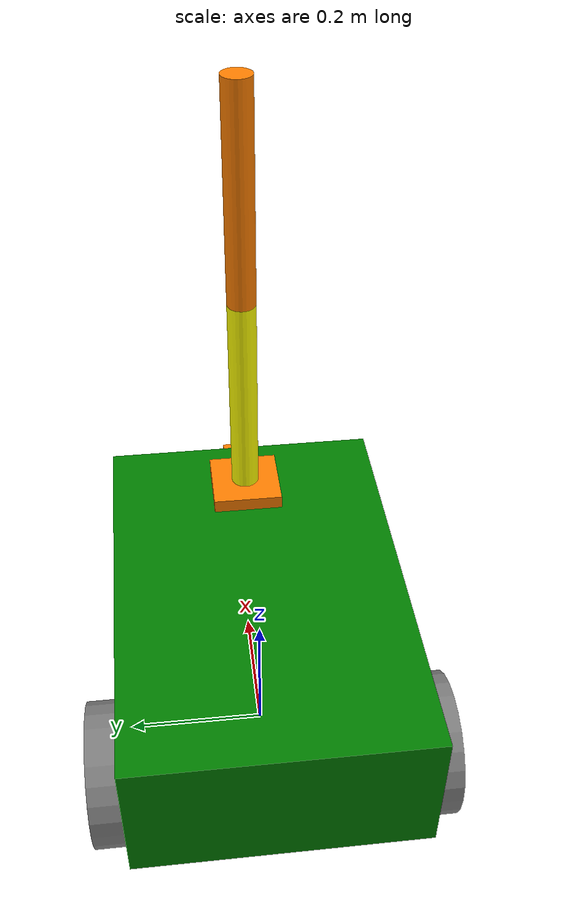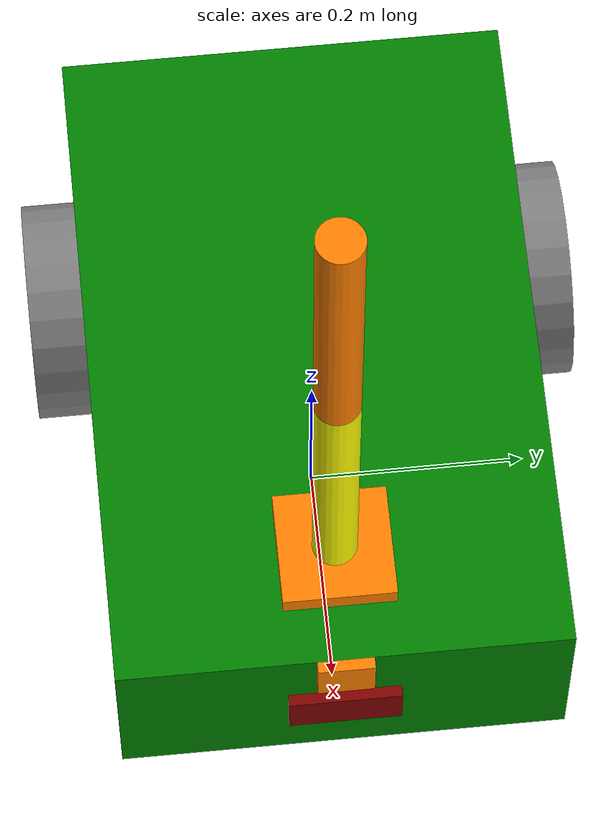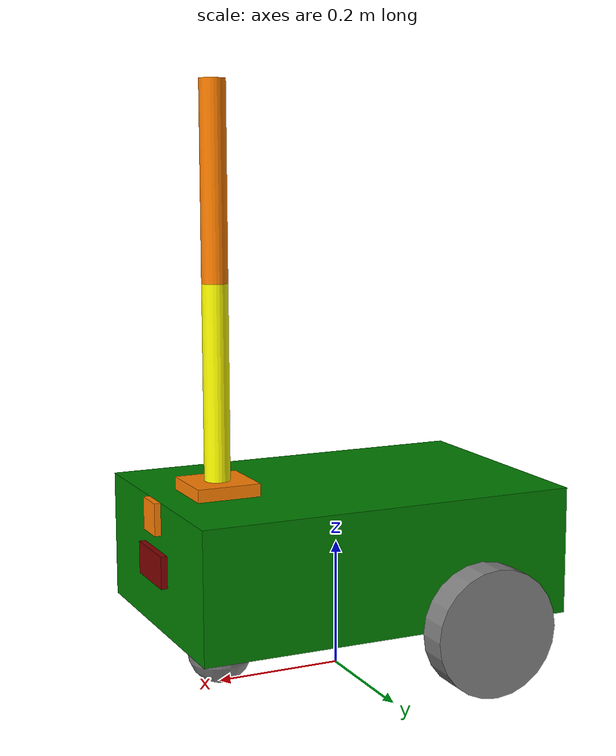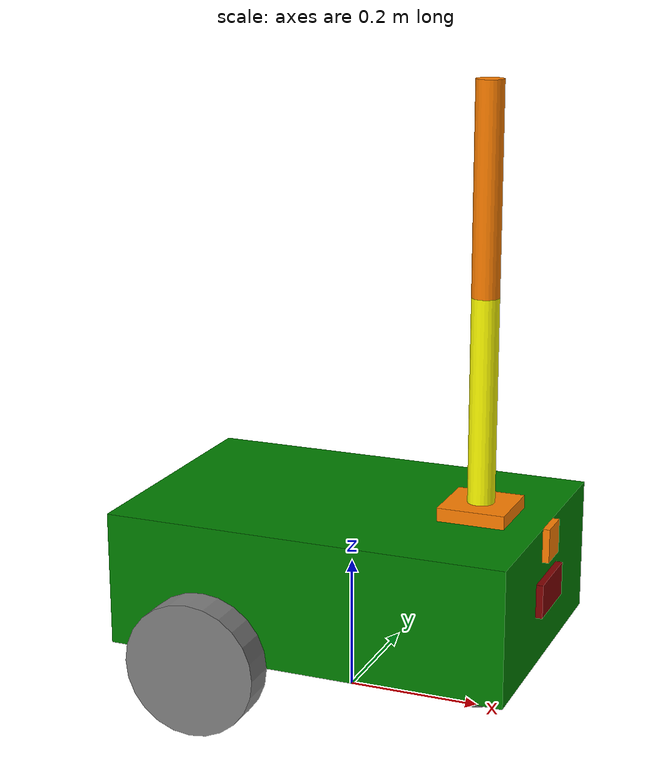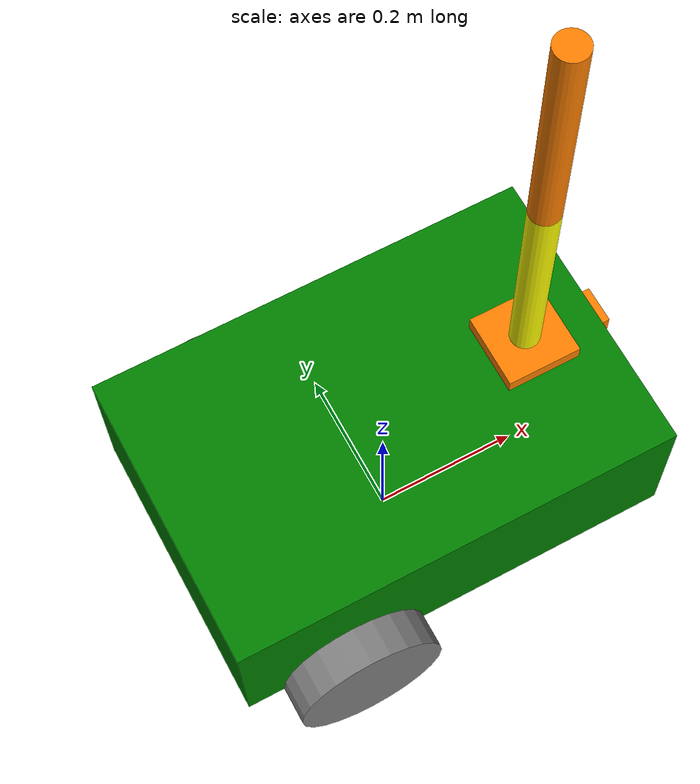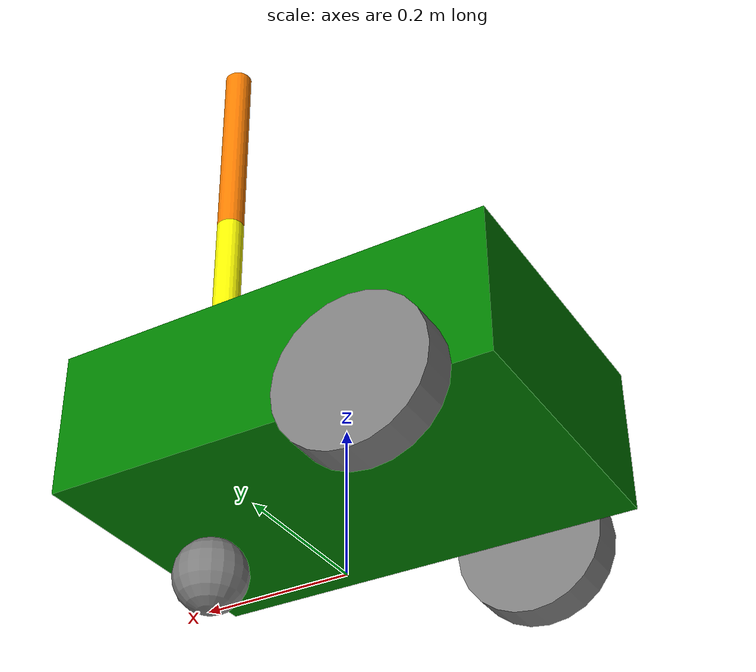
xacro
<?xml version="1.0"?>
<robot name="my_robot" xmlns:xacro="http://www.ros.org/wiki/xacro">

    <xacro:include filename="common_properties.xacro" />
    <xacro:include filename="mobile_base.xacro" />

    <xacro:include filename="mobile_base_gazebo.xacro" />
    <xacro:include filename="arm.xacro" />
    <xacro:include filename="arm_gazebo.xacro"/>
    <xacro:include filename="camera.xacro" />
    <xacro:include filename="distance_sensors.xacro" />

    <joint name="mobile_base_arm_joint" type="fixed">
        <parent link="base_link" />
        <child link="arm_base_link"/>
        <origin xyz="${base_length /3.0} 0 ${base_heigth}" rpy="0 0 0" />
    </joint>

</robot>

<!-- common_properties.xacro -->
<robot xmlns:xacro="http://www.ros.org/wiki/xacro">

    <material name="green">
        <color rgba="0 0.5 0 1" />
    </material>

    <material name="grey">
        <color rgba="0.5 0.5 0.5 1" />
    </material>

    <material name="red">
        <color rgba="0.5 0 0 1" />
    </material>

    <material name="yellow">
        <color rgba="1 1 0 1" />
    </material>

    <material name="orange">
        <color rgba="1.0 0.5 0 1" />
    </material>

    <xacro:macro name="box_inertia" params="m x y z o_xyz o_rpy">
        <inertial>
            <mass value="${m}"/>
            <origin xyz="${o_xyz}" rpy="${o_rpy}"/>
            <inertia ixx="${(m/12) * (y*y + z*z)}" ixy="0" ixz="0"
                     iyy="${(m/12) * (x*x+ z*z)}" iyz="0"
                     izz="${(m/12) * (y*y + x*x)}" />
        </inertial>
    </xacro:macro>

    <xacro:macro name="cylinder_inertia" params="m r l o_xyz o_rpy">
        <inertial>
            <mass value="${m}"/>
            <origin xyz="${o_xyz}" rpy="${o_rpy}"/>
            <inertia ixx="${(m/12) * (3*r*r + l*l)}" ixy="0" ixz="0"
                     iyy="${(m/12) * (3*r*r + l*l)}" iyz="0"
                     izz="${(m/2) * (r*r)}" />
        </inertial>
    </xacro:macro>

     <xacro:macro name="sphere_inertia" params="m r o_xyz o_rpy">
        <inertial>
            <mass value="${m}"/>
            <origin xyz="${o_xyz}" rpy="${o_rpy}"/>
            <inertia ixx="${(2*m/5) * (r*r)}" ixy="0" ixz="0"
                     iyy="${(2*m/5) * (r*r)}" iyz="0"
                     izz="${(2*m/5) * (r*r)}" />
        </inertial>
    </xacro:macro>

</robot>

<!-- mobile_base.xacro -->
<robot xmlns:xacro="http://www.ros.org/wiki/xacro">

    <xacro:property name="base_length" value="0.6" />
    <xacro:property name="base_width" value="0.4" />
    <xacro:property name="base_heigth" value="0.2" />
    <xacro:property name="wheel_radius" value="0.1" />
    <xacro:property name="wheel_length" value="0.05" />

    <link name="base_footprint"/>

    <link name="base_link">
        <visual>
            <geometry>
                <box size = "${base_length} ${base_width} ${base_heigth}" />
            </geometry>
            <origin xyz="0 0 ${base_heigth / 2.0}" rpy="0 0 0" />
            <material name="green" />
        </visual>

        <collision>
            <geometry>
                <box size = "${base_length} ${base_width} ${base_heigth}" />
            </geometry>
            <origin xyz="0 0 ${base_heigth / 2.0}" rpy="0 0 0" />
        </collision>

        <xacro:box_inertia m="5.0" x="${base_length}" y="${base_width}" z="${base_heigth}"
                           o_xyz= "0 0 ${base_heigth / 2.0}" o_rpy="0 0 0" />
    </link>

    <xacro:macro name="wheel_link" params="prefix">
         <link name="${prefix}_wheel_link">
        <visual>
            <geometry>
                <cylinder radius="${wheel_radius}" length="${wheel_length}"/>
            </geometry>
            <origin xyz="0 0 0" rpy="${pi / 2.0} 0 0" />
            <material name="grey" />
        </visual>

        <collision>
            <geometry>
                <sphere radius="${wheel_radius}" />
            </geometry>
            <origin xyz="0 0 0" rpy="0 0 0" />
        </collision>

        <xacro:cylinder_inertia m="1.0" r="${wheel_radius}" l="${wheel_length}"
                             o_xyz= "0 0 0" o_rpy="${pi / 2.0} 0 0" />
    </link>
    </xacro:macro>

    <xacro:wheel_link prefix="right" />
    <xacro:wheel_link prefix="left" />

     <link name="caster_wheel_link">
        <visual>
            <geometry>
                <sphere radius="${wheel_radius / 2.0}"/>
            </geometry>
            <origin xyz="0 0 0" rpy="0 0 0" />
            <material name="grey" />
        </visual>

        <collision>
            <geometry>
                <sphere radius="${wheel_radius / 2.0}"/>
            </geometry>
            <origin xyz="0 0 0" rpy="0 0 0" />
        </collision>

        <xacro:sphere_inertia m="0.5" r="${wheel_radius / 2.0}"
                                o_xyz= "0 0 0" o_rpy="0 0 0" />
    </link>

    <joint name="base_joint" type="fixed">
        <parent link="base_footprint"/>
        <child link="base_link"/>
        <origin xyz="0 0 ${wheel_radius}" rpy="0 0 0"/>
    </joint>

    <joint name="base_right_wheel_joint" type="continuous">
        <parent link="base_link"/>
        <child link="right_wheel_link"/>
        <origin xyz="${-base_length / 4.0} ${-(base_width / 2.0 + wheel_length / 2.0)} 0" rpy="0 0 0" />
        <axis xyz="0 1 0"/>

    </joint>

    <joint name="base_left_wheel_joint" type="continuous">
        <parent link="base_link"/>
        <child link="left_wheel_link"/>
        <origin xyz="${-base_length / 4.0} ${base_width / 2.0 + wheel_length / 2.0} 0" rpy="0 0 0" />
        <axis xyz="0 1 0"/>
    </joint>

    <joint name="base_caster_wheel_joint" type="fixed">
        <parent link="base_link"/>
        <child link="caster_wheel_link"/>
        <origin xyz="${base_length /3.0} 0 ${-wheel_radius / 2.0}" rpy="0 0 0" />
    </joint>

</robot>

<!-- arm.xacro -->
<robot xmlns:xacro="http://www.ros.org/wiki/xacro">

    <xacro:property name="arm_base_length" value="0.1" />
    <xacro:property name="arm_base_width" value="0.1" />
    <xacro:property name="arm_base_heigth" value="0.02" />

    <xacro:property name="forearm_length" value="0.3" />
    <xacro:property name="forearm_radius" value="0.02" />

    <xacro:property name="hand_length" value="0.3" />
    <xacro:property name="hand_radius" value="0.02" />

    <link name="arm_base_link">
        <visual>
            <geometry>
                <box size = "${arm_base_length} ${arm_base_width} ${arm_base_heigth}" />
            </geometry>
            <origin xyz="0 0 ${arm_base_heigth / 2.0}" rpy="0 0 0" />
            <material name="orange" />
        </visual>

        <collision>
            <geometry>
                <box size = "${arm_base_length} ${arm_base_width} ${arm_base_heigth}" />
            </geometry>
            <origin xyz="0 0 ${arm_base_heigth / 2.0}" rpy="0 0 0" />
        </collision>

        <xacro:box_inertia m="0.5" x="${arm_base_length}" y="${arm_base_width}" z="${arm_base_heigth}"
                           o_xyz= "0 0 ${arm_base_heigth / 2.0}" o_rpy="0 0 0" />

   </link>

    <link name="forearm_link">
        <visual>
            <geometry>
                <cylinder radius="${forearm_radius}" length="${forearm_length}"/>
            </geometry>
            <origin xyz="0 0 ${forearm_length/2.0}" rpy="0 0 0" />
            <material name="yellow" />
        </visual>

        <collision>
            <geometry>
                <box size = "${forearm_radius * 2.0} ${forearm_radius * 2.0} ${forearm_length}" />
            </geometry>
            <origin xyz="0 0 ${forearm_length/2.0}" rpy="0 0 0" />
        </collision>

        <xacro:cylinder_inertia m="0.3" r="${forearm_radius}" l="${forearm_length}"
                             o_xyz= "0 0 ${forearm_length/2.0}" o_rpy="0 0 0" />

   </link>

    <link name="hand_link">
        <visual>
            <geometry>
                <cylinder radius="${hand_radius}" length="${hand_length}"/>
            </geometry>
            <origin xyz="0 0 ${hand_length/2.0}" rpy="0 0 0" />
            <material name="orange" />
        </visual>

        <collision>
            <geometry>
                <box size = "${hand_radius * 2.0} ${hand_radius * 2.0} ${hand_length}" />
            </geometry>
            <origin xyz="0 0 ${hand_length/2.0}" rpy="0 0 0" />
        </collision>

        <xacro:cylinder_inertia m="0.3" r="${hand_radius}" l="${hand_length}"
                             o_xyz= "0 0 ${hand_length/2.0}" o_rpy="0 0 0" />

   </link>

   <joint name="arm_base_forearm_joint" type="revolute">
        <parent link="arm_base_link"/>
        <child link="forearm_link"/>
        <origin xyz="0 0 ${arm_base_heigth}" rpy="0 0 0"/>
        <axis xyz="0 1 0" />
        <limit lower="0" upper="${pi/2}" effort="100" velocity="100"/>
        <dynamics friction="0.3" damping="0.3" />
    </joint>

    <joint name="forearm_hand_joint" type="revolute">
        <parent link="forearm_link"/>
        <child link="hand_link"/>
        <origin xyz="0 0 ${forearm_length}" rpy="0 0 0"/>
        <axis xyz="0 1 0" />
        <limit lower="0" upper="${pi/2}" effort="100" velocity="100"/>
        <dynamics friction="0.3" damping="0.3" />
    </joint>

</robot>

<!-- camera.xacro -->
<robot xmlns:xacro="http://www.ros.org/wiki/xacro">

    <xacro:property name="camera_length" value="0.01" />
    <xacro:property name="camera_width" value="0.1" />
    <xacro:property name="camera_heigth" value="0.05" />

    <link name="camera_link" >
        <visual>
            <geometry>
            <box size="${camera_length} ${camera_width} ${camera_heigth}" />
            </geometry>
            <material name="red" />
        </visual>
        <collision>
            <geometry>
            <box size="${camera_length} ${camera_width} ${camera_heigth}" />
            </geometry>
        </collision>

        <xacro:box_inertia m="0.1" x="${camera_length}" y="${camera_width}" z="${camera_heigth}"
                           o_xyz= "0 0 0" o_rpy="0 0 0" />
    </link>

    <joint name="base_camera_joint" type="fixed" >
        <parent link="base_link"/>
        <child link="camera_link"/>
        <origin xyz="${base_length / 2.0 + camera_length/2.0} 0 ${base_heigth / 2.0}" rpy="0 0 0" />
    </joint>

    <link name="camera_link_optical"/>
    <joint name="camera_optical_joint" type="fixed">
        <origin xyz="0 0 0" rpy="${-pi/2} 0 ${-pi/2}"/>
        <parent link="camera_link"/>
        <child link="camera_link_optical"/>
    </joint>

    <gazebo reference="camera_link">
        <sensor name="camera" type="camera">
            <camera>
                <horizontal_fov>1.3962634</horizontal_fov>
                <image>
                    <width>640</width>
                    <height>480</height>
                    <format>R8G8B8</format>
                </image>
                <clip>
                    <near>0.1</near>
                    <far>15</far>
                </clip>
                <noise>
                    <type>gaussian</type>
                    <mean>0.0</mean>
                    <stddev>0.007</stddev>
                </noise>
                <optical_frame_id>camera_link_optical</optical_frame_id>
                <camera_info_topic>camera/camera_info</camera_info_topic>
            </camera>
            <always_on>1</always_on>
            <update_rate>20</update_rate>
            <visualize>true</visualize>
            <topic>camera/image_raw</topic>
        </sensor>
    </gazebo>

</robot>

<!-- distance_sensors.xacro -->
<robot xmlns:xacro="http://www.ros.org/wiki/xacro">

    <xacro:property name="tof_length" value="0.01" />
    <xacro:property name="tof_width" value="0.05" />
    <xacro:property name="tof_heigth" value="0.05" />

    <xacro:macro name="tof_link" params="prefix" >
        <link name="${prefix}_tof_link" >
            <visual>
                <geometry>
                    <box size="${tof_length} ${tof_width} ${tof_heigth}" />
                </geometry>
                <material name="orange" />
            </visual>
            <collision>
                <geometry>
                    <box size="${tof_length} ${tof_width} ${tof_heigth}" />
                </geometry>
            </collision>

            <xacro:box_inertia m="0.05" x="${tof_length}" y="${tof_width}" z="${tof_heigth}"
                            o_xyz= "0 0 0" o_rpy="0 0 0" />
        </link>
    </xacro:macro>

    <xacro:tof_link prefix="front" />

    <joint name="base_front_tof_joint" type="fixed" >
        <parent link="base_link"/>
        <child link="front_tof_link"/>
        <origin xyz="${base_length / 2.0 + tof_length/2.0} 0 ${base_heigth - tof_heigth /2.0}" rpy="0 0 0" />
    </joint>
</robot>
